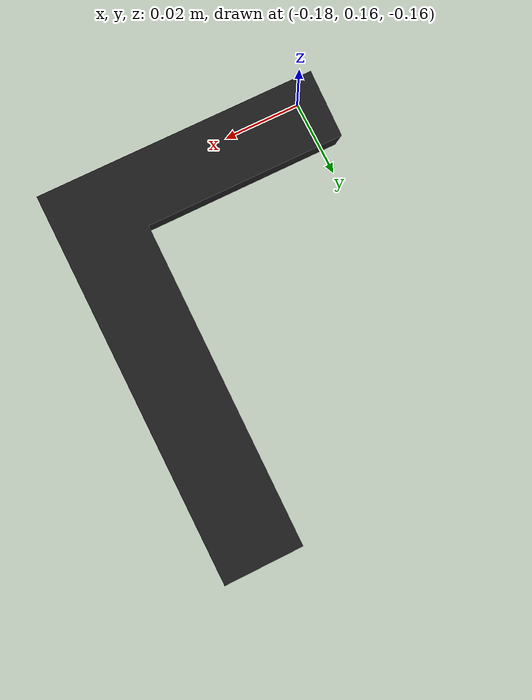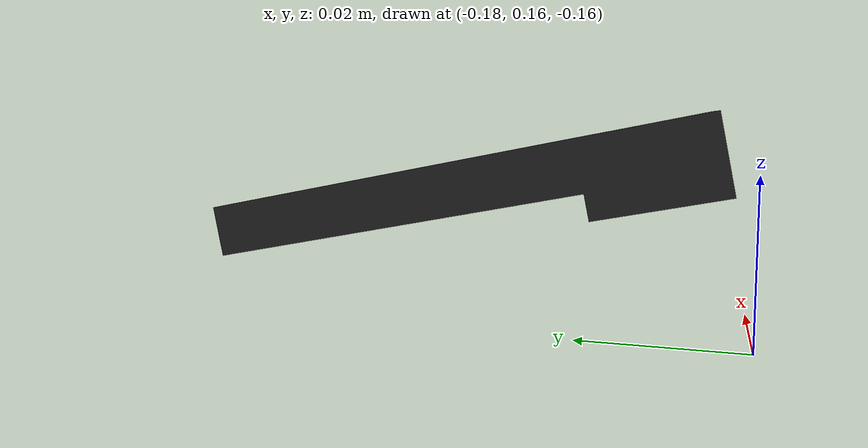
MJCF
<mujoco model="original-6">
  <default>
    <default class="visual">
      <geom group="2" type="mesh" contype="0" conaffinity="0"/>
    </default>
    <default class="collision">
      <geom group="3" type="mesh"/>
    </default>
  </default>
  <asset>
    <material name="material_0_0" specular="0.06666666666666667" shininess="0.03" rgba="0.11372549019607843 0.11372549019607843 0.11372549019607843 1"/>
    <mesh file="original-6.obj"/>
  </asset>
  <worldbody>
    <body name="original-6">
      <geom material="material_0_0" mesh="original-6" class="visual"/>
      <geom mesh="original-6" class="collision"/>
    </body>
  </worldbody>
</mujoco>
